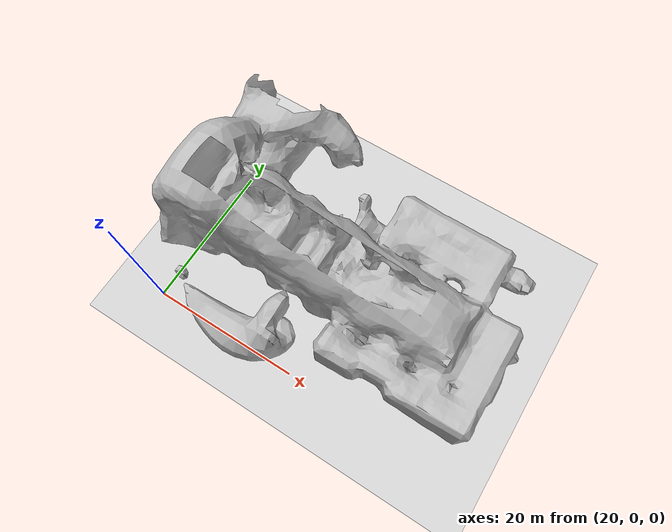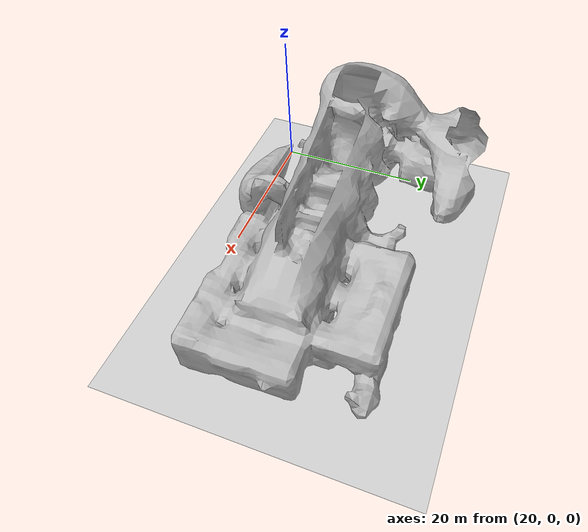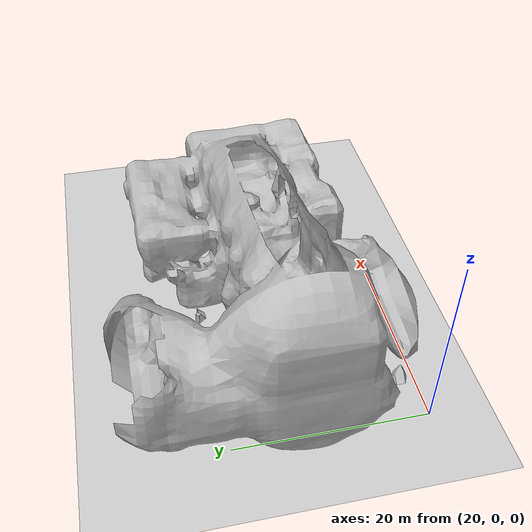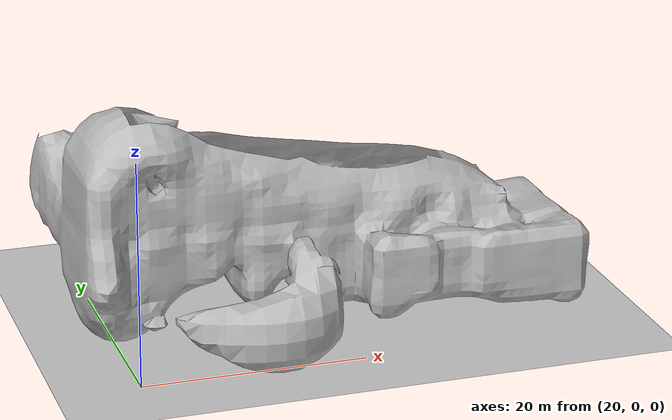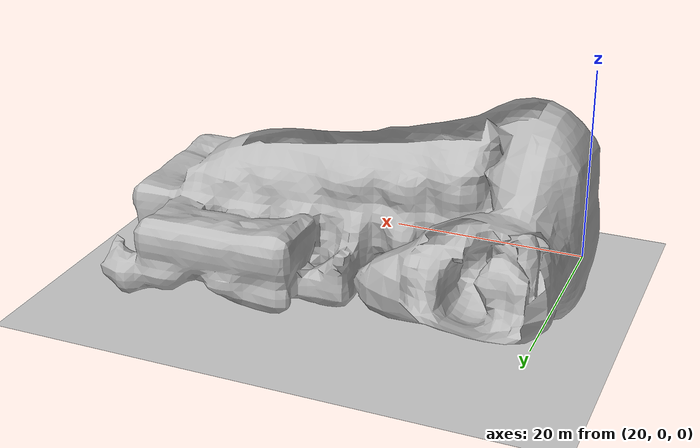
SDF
<sdf version="1.6">
 <world name="default">
  <light name="sun" type="directional">
   <pose>0 0 10 0 -0 0</pose>
   <diffuse>0.8 0.8 0.8 1</diffuse>
   <specular>0.2 0.2 0.2 1</specular>
   <attenuation>
    <range>1000</range>
    <constant>0.9</constant>
    <linear>0.01</linear>
    <quadratic>0.001</quadratic>
   </attenuation>
   <direction>-0.5 0.1 -0.9</direction>
  </light>
  <model name="ground_plane">
   <static>1</static>
   <link name="link">
    <collision name="collision">
     <geometry><plane><normal>0 0 1</normal><size>100 100</size></plane></geometry>
     <surface>
      <contact><collide_bitmask>65535</collide_bitmask></contact>
      <friction><ode><mu>100</mu><mu2>50</mu2></ode></friction>
     </surface>
    </collision>
    <visual name="visual">
     <cast_shadows>0</cast_shadows>
     <geometry><plane><normal>0 0 1</normal><size>100 100</size></plane></geometry>
     <material>
      <script><uri>file://media/materials/scripts/gazebo.material</uri><name>Gazebo/Grey</name></script>
     </material>
    </visual>
   </link>
  </model>
  <gravity>0 0 -9.8</gravity>
  <magnetic_field>6e-06 2.3e-05 -4.2e-05</magnetic_field>
  <atmosphere type="adiabatic"/>
  <physics name="default_physics" default="0" type="ode">
   <max_step_size>0.001</max_step_size>
   <real_time_factor>1</real_time_factor>
   <real_time_update_rate>1000</real_time_update_rate>
  </physics>
  <scene><ambient>0.4 0.4 0.4 1</ambient><background>0.7 0.7 0.7 1</background><shadows>1</shadows></scene>
  <spherical_coordinates>
   <surface_model>EARTH_WGS84</surface_model>
   <latitude_deg>0</latitude_deg>
   <longitude_deg>0</longitude_deg>
   <elevation>0</elevation>
   <heading_deg>0</heading_deg>
  </spherical_coordinates>
  <include><uri>model://thermal_central</uri><name>termal_central</name></include>
  <plugin name="gazebo_octomap" filename="libBuildOctomapPlugin.so"/>
 </world>
</sdf>

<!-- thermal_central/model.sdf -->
<sdf version="1.5">
  <model name="thermal_central">
    <static>true</static>

   <link name="link">
      <collision name="collision">
        <geometry>
          <mesh>
            <uri>model://thermal_central/mesh/thermal_central.stl</uri>
          </mesh>
        </geometry>
      </collision>
      <visual name="visual">
        <geometry>
          <mesh>
            <uri>model://thermal_central/mesh/thermal_central.stl</uri>
          </mesh>
        </geometry>
      </visual>
    </link>
  </model>
</sdf>
